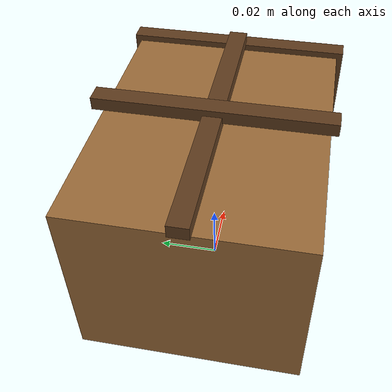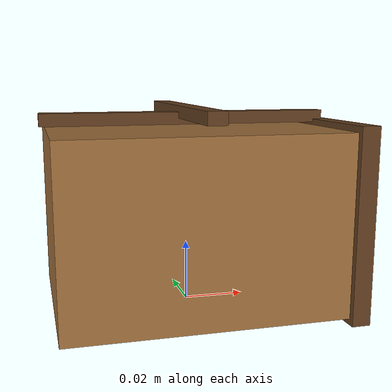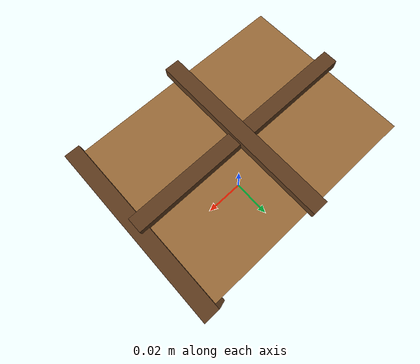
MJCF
<mujoco model="custom_cardboard_box">
  <asset>
    <material name="cardboard" rgba="0.62 0.43 0.23 1"/>
    <material name="cardboard_edge" rgba="0.38 0.24 0.12 1"/>
  </asset>
  <worldbody>
    <body>
      <body name="object">
        <geom name="box_col" type="box" size="0.046 0.036 0.030" pos="0 0 0.030" rgba="0 0 0 0" density="160" group="0" contype="1" conaffinity="1"/>
        <geom name="box_body" type="box" size="0.045 0.035 0.029" pos="0 0 0.030" material="cardboard" group="1" contype="0" conaffinity="0"/>
        <geom name="front_seam" type="box" size="0.003 0.037 0.031" pos="0.047 0 0.030" material="cardboard_edge" group="1" contype="0" conaffinity="0"/>
        <geom name="top_seam_x" type="box" size="0.047 0.003 0.002" pos="0 0 0.062" material="cardboard_edge" group="1" contype="0" conaffinity="0"/>
        <geom name="top_seam_y" type="box" size="0.003 0.037 0.002" pos="0 0 0.064" material="cardboard_edge" group="1" contype="0" conaffinity="0"/>
        <geom name="reg_bbox" type="box" size="0.050 0.040 0.034" pos="0 0 0.034" rgba="0 0 0 0" group="3" contype="0" conaffinity="0"/>
      </body>
      <site name="bottom_site" pos="0 0 0" size="0.005" rgba="0 0 0 0"/>
      <site name="top_site" pos="0 0 0.068" size="0.005" rgba="0 0 0 0"/>
      <site name="horizontal_radius_site" pos="0.058 0 0.034" size="0.005" rgba="0 0 0 0"/>
    </body>
  </worldbody>
</mujoco>
